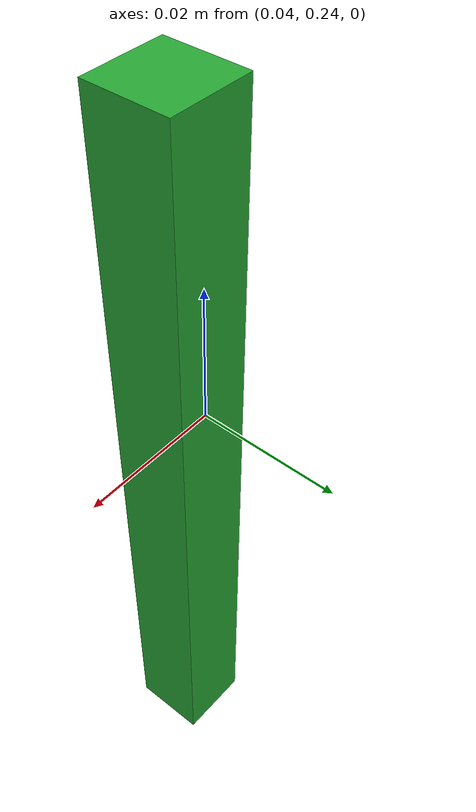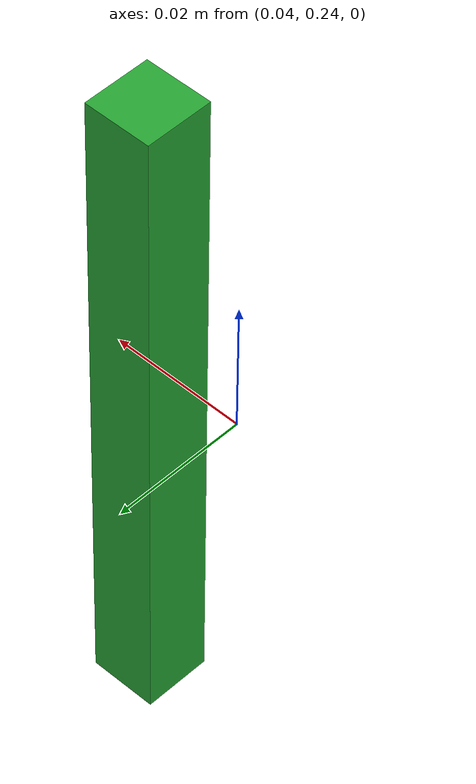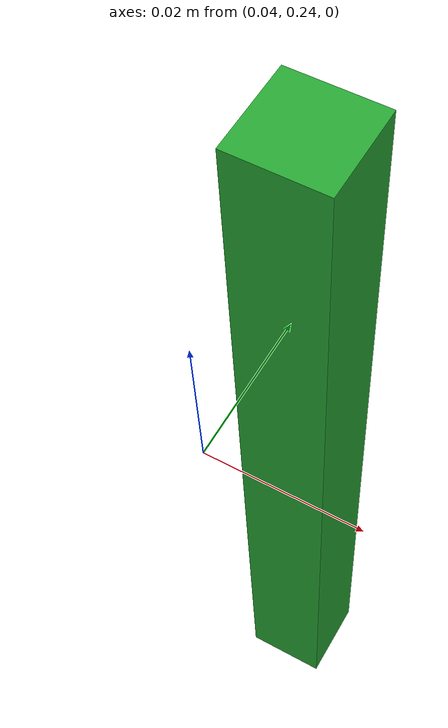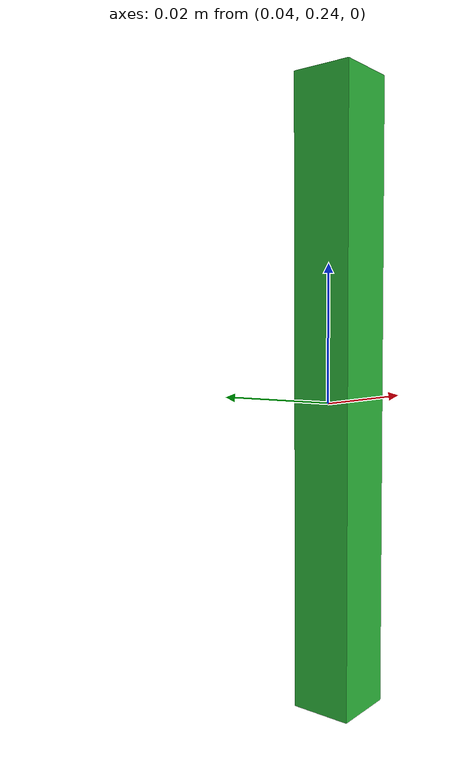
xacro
<?xml version="1.0"?>
<robot xmlns:xacro="http://www.ros.org/wiki/xacro" name="obstacle">

    <xacro:include filename="inertial_macros.xacro"/>
    <xacro:include filename="materials.xacro"/>

    <xacro:property name="PI" value="3.1415926535897931"/>
    <!--LINK_1 -->
    <link name = "base"></link>
    <link name="obs_1">
        <visual>
            <origin xyz="0.05 0.07 0" rpy="0.0 0.0 0.0"/>
            <geometry>
                <box size="0.01 0.01 0.1"/>
            </geometry>
            <material name="green"/>
        </visual>
        <collision>
            <origin xyz="0.05 0.07 0" rpy="0.0 0.0 0.0"/>
            <geometry>
                <box size="0.01 0.01 0.1"/>
            </geometry>
        </collision>
        <xacro:inertial_box mass="20" x="0.06" y="0.14" z="0.06">
            <origin xyz="0.05 0.07 0" rpy="0.0 0.0 0.0"/>
        </xacro:inertial_box>
    </link>

    <!-- JOINT BETWEEN THE TAIL AND THE  LINK_2 -->

    <joint name="obs_1_joint" type="fixed">
        <parent link="base"/>
        <child link="obs_1"/>
        <limit lower="-0.785398163397" upper="0.785398163397" velocity="50.0" effort="1000.0"/>
        <origin xyz="0.0 0.175 0.0" rpy="0 0 0"/>
        <axis xyz="0 0 1"/>
        <joint_properties damping="6.0" friction="6.0"/>
    </joint>

</robot>
